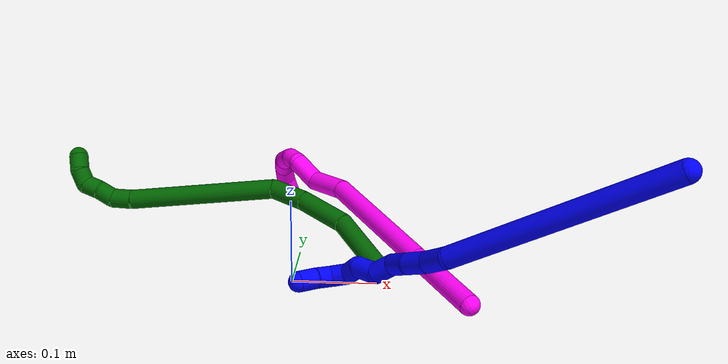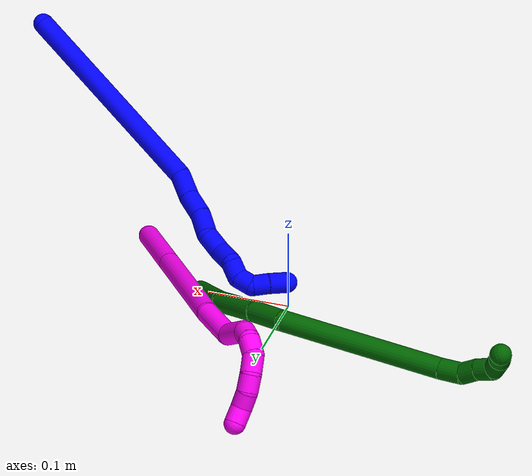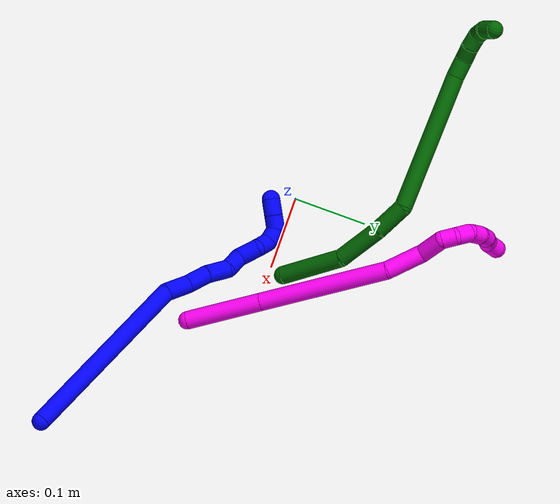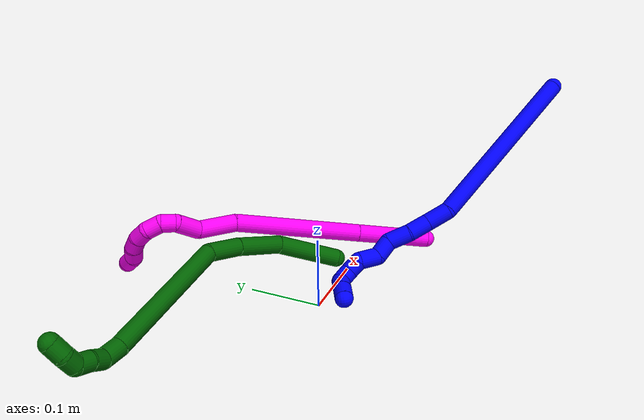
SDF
<sdf version="1.7">
 <world name="default">
  <model name="1">
   <static>0</static>
   <link name="1">
    <collision name="collision-cylinder-e_1_1_4">
     <pose>-0.076024 0.046349 -0.098505 -2.70181 -0.609606 1.9062</pose>
     <geometry><cylinder><radius>0.0125</radius><length>0.265564</length></cylinder></geometry>
     <surface>
      <friction><ode><mu>1.16</mu><mu2>1.16</mu2><slip1>0</slip1><slip2>0</slip2></ode></friction>
      <contact><ode><kp>1e+06</kp><kd>1</kd><max_vel>0</max_vel><min_depth>0.001</min_depth></ode></contact>
     </surface>
    </collision>
    <visual name="visual-cylinder-e_1_1_4">
     <pose>-0.076024 0.046349 -0.098505 -2.70181 -0.609606 1.9062</pose>
     <geometry><cylinder><radius>0.0125</radius><length>0.265564</length></cylinder></geometry>
     <material><ambient>0 0 1 1</ambient></material>
    </visual>
    <collision name="collision-cylinder-e_2_4_5">
     <pose>-0.158288 0.09359 -0.212978 -3.08571 -0.372092 2.84677</pose>
     <geometry><cylinder><radius>0.0125</radius><length>0.034335</length></cylinder></geometry>
     <surface>
      <friction><ode><mu>1.16</mu><mu2>1.16</mu2><slip1>0</slip1><slip2>0</slip2></ode></friction>
      <contact><ode><kp>1e+06</kp><kd>1</kd><max_vel>0</max_vel><min_depth>0.001</min_depth></ode></contact>
     </surface>
    </collision>
    <visual name="visual-cylinder-e_2_4_5">
     <pose>-0.158288 0.09359 -0.212978 -3.08571 -0.372092 2.84677</pose>
     <geometry><cylinder><radius>0.0125</radius><length>0.034335</length></cylinder></geometry>
     <material><ambient>0 0 1 1</ambient></material>
    </visual>
    <collision name="collision-cylinder-e_3_5_6">
     <pose>-0.169473 0.097666 -0.243044 -2.91956 -0.329509 1.96033</pose>
     <geometry><cylinder><radius>0.0125</radius><length>0.030552</length></cylinder></geometry>
     <surface>
      <friction><ode><mu>1.16</mu><mu2>1.16</mu2><slip1>0</slip1><slip2>0</slip2></ode></friction>
      <contact><ode><kp>1e+06</kp><kd>1</kd><max_vel>0</max_vel><min_depth>0.001</min_depth></ode></contact>
     </surface>
    </collision>
    <visual name="visual-cylinder-e_3_5_6">
     <pose>-0.169473 0.097666 -0.243044 -2.91956 -0.329509 1.96033</pose>
     <geometry><cylinder><radius>0.0125</radius><length>0.030552</length></cylinder></geometry>
     <material><ambient>0 0 1 1</ambient></material>
    </visual>
    <collision name="collision-cylinder-e_4_6_7">
     <pose>-0.178429 0.100951 -0.272412 -3.13491 -0.257003 3.08991</pose>
     <geometry><cylinder><radius>0.0125</radius><length>0.031575</length></cylinder></geometry>
     <surface>
      <friction><ode><mu>1.16</mu><mu2>1.16</mu2><slip1>0</slip1><slip2>0</slip2></ode></friction>
      <contact><ode><kp>1e+06</kp><kd>1</kd><max_vel>0</max_vel><min_depth>0.001</min_depth></ode></contact>
     </surface>
    </collision>
    <visual name="visual-cylinder-e_4_6_7">
     <pose>-0.178429 0.100951 -0.272412 -3.13491 -0.257003 3.08991</pose>
     <geometry><cylinder><radius>0.0125</radius><length>0.031575</length></cylinder></geometry>
     <material><ambient>0 0 1 1</ambient></material>
    </visual>
    <collision name="collision-cylinder-e_5_7_8">
     <pose>-0.190799 0.104793 -0.296889 -2.75581 -0.699199 2.15792</pose>
     <geometry><cylinder><radius>0.0125</radius><length>0.025971</length></cylinder></geometry>
     <surface>
      <friction><ode><mu>1.16</mu><mu2>1.16</mu2><slip1>0</slip1><slip2>0</slip2></ode></friction>
      <contact><ode><kp>1e+06</kp><kd>1</kd><max_vel>0</max_vel><min_depth>0.001</min_depth></ode></contact>
     </surface>
    </collision>
    <visual name="visual-cylinder-e_5_7_8">
     <pose>-0.190799 0.104793 -0.296889 -2.75581 -0.699199 2.15792</pose>
     <geometry><cylinder><radius>0.0125</radius><length>0.025971</length></cylinder></geometry>
     <material><ambient>0 0 1 1</ambient></material>
    </visual>
    <collision name="collision-cylinder-e_6_8_9">
     <pose>-0.199636 0.113355 -0.31966 -2.80002 -0.033324 0.192641</pose>
     <geometry><cylinder><radius>0.0125</radius><length>0.028805</length></cylinder></geometry>
     <surface>
      <friction><ode><mu>1.16</mu><mu2>1.16</mu2><slip1>0</slip1><slip2>0</slip2></ode></friction>
      <contact><ode><kp>1e+06</kp><kd>1</kd><max_vel>0</max_vel><min_depth>0.001</min_depth></ode></contact>
     </surface>
    </collision>
    <visual name="visual-cylinder-e_6_8_9">
     <pose>-0.199636 0.113355 -0.31966 -2.80002 -0.033324 0.192641</pose>
     <geometry><cylinder><radius>0.0125</radius><length>0.028805</length></cylinder></geometry>
     <material><ambient>0 0 1 1</ambient></material>
    </visual>
    <collision name="collision-cylinder-e_7_9_10">
     <pose>-0.206391 0.118673 -0.341214 -3.07951 -0.664738 2.96217</pose>
     <geometry><cylinder><radius>0.0125</radius><length>0.020345</length></cylinder></geometry>
     <surface>
      <friction><ode><mu>1.16</mu><mu2>1.16</mu2><slip1>0</slip1><slip2>0</slip2></ode></friction>
      <contact><ode><kp>1e+06</kp><kd>1</kd><max_vel>0</max_vel><min_depth>0.001</min_depth></ode></contact>
     </surface>
    </collision>
    <visual name="visual-cylinder-e_7_9_10">
     <pose>-0.206391 0.118673 -0.341214 -3.07951 -0.664738 2.96217</pose>
     <geometry><cylinder><radius>0.0125</radius><length>0.020345</length></cylinder></geometry>
     <material><ambient>0 0 1 1</ambient></material>
    </visual>
    <collision name="collision-cylinder-e_8_10_11">
     <pose>-0.217336 0.125432 -0.355887 -2.38857 -0.471632 1.09219</pose>
     <geometry><cylinder><radius>0.0125</radius><length>0.020558</length></cylinder></geometry>
     <surface>
      <friction><ode><mu>1.16</mu><mu2>1.16</mu2><slip1>0</slip1><slip2>0</slip2></ode></friction>
      <contact><ode><kp>1e+06</kp><kd>1</kd><max_vel>0</max_vel><min_depth>0.001</min_depth></ode></contact>
     </surface>
    </collision>
    <visual name="visual-cylinder-e_8_10_11">
     <pose>-0.217336 0.125432 -0.355887 -2.38857 -0.471632 1.09219</pose>
     <geometry><cylinder><radius>0.0125</radius><length>0.020558</length></cylinder></geometry>
     <material><ambient>0 0 1 1</ambient></material>
    </visual>
    <collision name="collision-cylinder-e_9_11_12">
     <pose>-0.225558 0.141169 -0.36231 -1.54361 -0.358451 0.349032</pose>
     <geometry><cylinder><radius>0.0125</radius><length>0.020244</length></cylinder></geometry>
     <surface>
      <friction><ode><mu>1.16</mu><mu2>1.16</mu2><slip1>0</slip1><slip2>0</slip2></ode></friction>
      <contact><ode><kp>1e+06</kp><kd>1</kd><max_vel>0</max_vel><min_depth>0.001</min_depth></ode></contact>
     </surface>
    </collision>
    <visual name="visual-cylinder-e_9_11_12">
     <pose>-0.225558 0.141169 -0.36231 -1.54361 -0.358451 0.349032</pose>
     <geometry><cylinder><radius>0.0125</radius><length>0.020244</length></cylinder></geometry>
     <material><ambient>0 0 1 1</ambient></material>
    </visual>
    <collision name="collision-cylinder-e_10_12_2">
     <pose>-0.233752 0.160643 -0.361938 -1.55937 -0.434708 0.429921</pose>
     <geometry><cylinder><radius>0.0125</radius><length>0.022052</length></cylinder></geometry>
     <surface>
      <friction><ode><mu>1.16</mu><mu2>1.16</mu2><slip1>0</slip1><slip2>0</slip2></ode></friction>
      <contact><ode><kp>1e+06</kp><kd>1</kd><max_vel>0</max_vel><min_depth>0.001</min_depth></ode></contact>
     </surface>
    </collision>
    <visual name="visual-cylinder-e_10_12_2">
     <pose>-0.233752 0.160643 -0.361938 -1.55937 -0.434708 0.429921</pose>
     <geometry><cylinder><radius>0.0125</radius><length>0.022052</length></cylinder></geometry>
     <material><ambient>0 0 1 1</ambient></material>
    </visual>
    <collision name="collision-sphere-2">
     <pose>-0.238396 0.170643 -0.361824 0 -0 0</pose>
     <geometry><sphere><radius>0.0125</radius></sphere></geometry>
     <surface>
      <friction><ode><mu>1.16</mu><mu2>1.16</mu2><slip1>0</slip1><slip2>0</slip2></ode></friction>
      <contact><ode><kp>1e+06</kp><kd>1</kd><max_vel>0</max_vel><min_depth>0.001</min_depth></ode></contact>
     </surface>
    </collision>
    <visual name="visual-sphere-2">
     <pose>-0.238396 0.170643 -0.361824 0 -0 0</pose>
     <geometry><sphere><radius>0.0125</radius></sphere></geometry>
     <material><ambient>0 0 1 1</ambient></material>
    </visual>
    <collision name="collision-sphere-12">
     <pose>-0.229109 0.150644 -0.362052 0 -0 0</pose>
     <geometry><sphere><radius>0.0125</radius></sphere></geometry>
     <surface>
      <friction><ode><mu>1.16</mu><mu2>1.16</mu2><slip1>0</slip1><slip2>0</slip2></ode></friction>
      <contact><ode><kp>1e+06</kp><kd>1</kd><max_vel>0</max_vel><min_depth>0.001</min_depth></ode></contact>
     </surface>
    </collision>
    <visual name="visual-sphere-12">
     <pose>-0.229109 0.150644 -0.362052 0 -0 0</pose>
     <geometry><sphere><radius>0.0125</radius></sphere></geometry>
     <material><ambient>0 0 1 1</ambient></material>
    </visual>
    <collision name="collision-sphere-11">
     <pose>-0.222007 0.131694 -0.362568 0 -0 0</pose>
     <geometry><sphere><radius>0.0125</radius></sphere></geometry>
     <surface>
      <friction><ode><mu>1.16</mu><mu2>1.16</mu2><slip1>0</slip1><slip2>0</slip2></ode></friction>
      <contact><ode><kp>1e+06</kp><kd>1</kd><max_vel>0</max_vel><min_depth>0.001</min_depth></ode></contact>
     </surface>
    </collision>
    <visual name="visual-sphere-11">
     <pose>-0.222007 0.131694 -0.362568 0 -0 0</pose>
     <geometry><sphere><radius>0.0125</radius></sphere></geometry>
     <material><ambient>0 0 1 1</ambient></material>
    </visual>
    <collision name="collision-sphere-10">
     <pose>-0.212666 0.11917 -0.349206 0 -0 0</pose>
     <geometry><sphere><radius>0.0125</radius></sphere></geometry>
     <surface>
      <friction><ode><mu>1.16</mu><mu2>1.16</mu2><slip1>0</slip1><slip2>0</slip2></ode></friction>
      <contact><ode><kp>1e+06</kp><kd>1</kd><max_vel>0</max_vel><min_depth>0.001</min_depth></ode></contact>
     </surface>
    </collision>
    <visual name="visual-sphere-10">
     <pose>-0.212666 0.11917 -0.349206 0 -0 0</pose>
     <geometry><sphere><radius>0.0125</radius></sphere></geometry>
     <material><ambient>0 0 1 1</ambient></material>
    </visual>
    <collision name="collision-sphere-9">
     <pose>-0.200116 0.118176 -0.333223 0 -0 0</pose>
     <geometry><sphere><radius>0.0125</radius></sphere></geometry>
     <surface>
      <friction><ode><mu>1.16</mu><mu2>1.16</mu2><slip1>0</slip1><slip2>0</slip2></ode></friction>
      <contact><ode><kp>1e+06</kp><kd>1</kd><max_vel>0</max_vel><min_depth>0.001</min_depth></ode></contact>
     </surface>
    </collision>
    <visual name="visual-sphere-9">
     <pose>-0.200116 0.118176 -0.333223 0 -0 0</pose>
     <geometry><sphere><radius>0.0125</radius></sphere></geometry>
     <material><ambient>0 0 1 1</ambient></material>
    </visual>
    <collision name="collision-sphere-4">
     <pose>-0.152047 0.092697 -0.19701 0 -0 0</pose>
     <geometry><sphere><radius>0.0125</radius></sphere></geometry>
     <surface>
      <friction><ode><mu>1.16</mu><mu2>1.16</mu2><slip1>0</slip1><slip2>0</slip2></ode></friction>
      <contact><ode><kp>1e+06</kp><kd>1</kd><max_vel>0</max_vel><min_depth>0.001</min_depth></ode></contact>
     </surface>
    </collision>
    <visual name="visual-sphere-4">
     <pose>-0.152047 0.092697 -0.19701 0 -0 0</pose>
     <geometry><sphere><radius>0.0125</radius></sphere></geometry>
     <material><ambient>0 0 1 1</ambient></material>
    </visual>
    <collision name="collision-sphere-1">
     <geometry><sphere><radius>0.0125</radius></sphere></geometry>
     <surface>
      <friction><ode><mu>1.16</mu><mu2>1.16</mu2><slip1>0</slip1><slip2>0</slip2></ode></friction>
      <contact><ode><kp>1e+06</kp><kd>1</kd><max_vel>0</max_vel><min_depth>0.001</min_depth></ode></contact>
     </surface>
    </collision>
    <visual name="visual-sphere-1">
     <geometry><sphere><radius>0.0125</radius></sphere></geometry>
     <material><ambient>0 0 1 1</ambient></material>
    </visual>
    <collision name="collision-sphere-8">
     <pose>-0.199156 0.108533 -0.306097 0 -0 0</pose>
     <geometry><sphere><radius>0.0125</radius></sphere></geometry>
     <surface>
      <friction><ode><mu>1.16</mu><mu2>1.16</mu2><slip1>0</slip1><slip2>0</slip2></ode></friction>
      <contact><ode><kp>1e+06</kp><kd>1</kd><max_vel>0</max_vel><min_depth>0.001</min_depth></ode></contact>
     </surface>
    </collision>
    <visual name="visual-sphere-8">
     <pose>-0.199156 0.108533 -0.306097 0 -0 0</pose>
     <geometry><sphere><radius>0.0125</radius></sphere></geometry>
     <material><ambient>0 0 1 1</ambient></material>
    </visual>
    <collision name="collision-sphere-5">
     <pose>-0.16453 0.094484 -0.228945 0 -0 0</pose>
     <geometry><sphere><radius>0.0125</radius></sphere></geometry>
     <surface>
      <friction><ode><mu>1.16</mu><mu2>1.16</mu2><slip1>0</slip1><slip2>0</slip2></ode></friction>
      <contact><ode><kp>1e+06</kp><kd>1</kd><max_vel>0</max_vel><min_depth>0.001</min_depth></ode></contact>
     </surface>
    </collision>
    <visual name="visual-sphere-5">
     <pose>-0.16453 0.094484 -0.228945 0 -0 0</pose>
     <geometry><sphere><radius>0.0125</radius></sphere></geometry>
     <material><ambient>0 0 1 1</ambient></material>
    </visual>
    <collision name="collision-sphere-6">
     <pose>-0.174416 0.100849 -0.257144 0 -0 0</pose>
     <geometry><sphere><radius>0.0125</radius></sphere></geometry>
     <surface>
      <friction><ode><mu>1.16</mu><mu2>1.16</mu2><slip1>0</slip1><slip2>0</slip2></ode></friction>
      <contact><ode><kp>1e+06</kp><kd>1</kd><max_vel>0</max_vel><min_depth>0.001</min_depth></ode></contact>
     </surface>
    </collision>
    <visual name="visual-sphere-6">
     <pose>-0.174416 0.100849 -0.257144 0 -0 0</pose>
     <geometry><sphere><radius>0.0125</radius></sphere></geometry>
     <material><ambient>0 0 1 1</ambient></material>
    </visual>
    <collision name="collision-sphere-7">
     <pose>-0.182442 0.101053 -0.287681 0 -0 0</pose>
     <geometry><sphere><radius>0.0125</radius></sphere></geometry>
     <surface>
      <friction><ode><mu>1.16</mu><mu2>1.16</mu2><slip1>0</slip1><slip2>0</slip2></ode></friction>
      <contact><ode><kp>1e+06</kp><kd>1</kd><max_vel>0</max_vel><min_depth>0.001</min_depth></ode></contact>
     </surface>
    </collision>
    <visual name="visual-sphere-7">
     <pose>-0.182442 0.101053 -0.287681 0 -0 0</pose>
     <geometry><sphere><radius>0.0125</radius></sphere></geometry>
     <material><ambient>0 0 1 1</ambient></material>
    </visual>
    <inertial>
     <pose>-0.131058 0.078147 -0.191983 0 -0 0</pose>
     <mass>0.5</mass>
     <inertia>
      <ixx>0.000778</ixx>
      <ixy>0</ixy>
      <ixz>0</ixz>
      <iyy>0.002079</iyy>
      <iyz>0</iyz>
      <izz>0.000325</izz>
     </inertia>
    </inertial>
   </link>
   <pose>0.391552 -0.217238 0.2078 1.27475 -1.15847 0.757304</pose>
  </model>
  <model name="6">
   <static>0</static>
   <link name="6">
    <collision name="collision-cylinder-e_1_1_4">
     <pose>-0.019321 0.025427 0.031174 -0.684223 -0.447742 0.161812</pose>
     <geometry><cylinder><radius>0.0125</radius><length>0.089256</length></cylinder></geometry>
     <surface>
      <friction><ode><mu>1.16</mu><mu2>1.16</mu2><slip1>0</slip1><slip2>0</slip2></ode></friction>
      <contact><ode><kp>1e+06</kp><kd>1</kd><max_vel>0</max_vel><min_depth>0.001</min_depth></ode></contact>
     </surface>
    </collision>
    <visual name="visual-cylinder-e_1_1_4">
     <pose>-0.019321 0.025427 0.031174 -0.684223 -0.447742 0.161812</pose>
     <geometry><cylinder><radius>0.0125</radius><length>0.089256</length></cylinder></geometry>
     <material><ambient>0 0.392157 0.003922 1</ambient></material>
    </visual>
    <collision name="collision-cylinder-e_2_4_5">
     <pose>-0.053197 0.058864 0.090234 -0.279687 -0.464989 0.066634</pose>
     <geometry><cylinder><radius>0.0125</radius><length>0.064921</length></cylinder></geometry>
     <surface>
      <friction><ode><mu>1.16</mu><mu2>1.16</mu2><slip1>0</slip1><slip2>0</slip2></ode></friction>
      <contact><ode><kp>1e+06</kp><kd>1</kd><max_vel>0</max_vel><min_depth>0.001</min_depth></ode></contact>
     </surface>
    </collision>
    <visual name="visual-cylinder-e_2_4_5">
     <pose>-0.053197 0.058864 0.090234 -0.279687 -0.464989 0.066634</pose>
     <geometry><cylinder><radius>0.0125</radius><length>0.064921</length></cylinder></geometry>
     <material><ambient>0 0.392157 0.003922 1</ambient></material>
    </visual>
    <collision name="collision-cylinder-e_3_5_6">
     <pose>-0.078937 0.069729 0.138369 -0.140068 -0.500474 0.035855</pose>
     <geometry><cylinder><radius>0.0125</radius><length>0.046615</length></cylinder></geometry>
     <surface>
      <friction><ode><mu>1.16</mu><mu2>1.16</mu2><slip1>0</slip1><slip2>0</slip2></ode></friction>
      <contact><ode><kp>1e+06</kp><kd>1</kd><max_vel>0</max_vel><min_depth>0.001</min_depth></ode></contact>
     </surface>
    </collision>
    <visual name="visual-cylinder-e_3_5_6">
     <pose>-0.078937 0.069729 0.138369 -0.140068 -0.500474 0.035855</pose>
     <geometry><cylinder><radius>0.0125</radius><length>0.046615</length></cylinder></geometry>
     <material><ambient>0 0.392157 0.003922 1</ambient></material>
    </visual>
    <collision name="collision-cylinder-e_4_6_7">
     <pose>-0.131316 0.034943 0.23635 0.450956 -0.445063 -0.103714</pose>
     <geometry><cylinder><radius>0.0125</radius><length>0.191376</length></cylinder></geometry>
     <surface>
      <friction><ode><mu>1.16</mu><mu2>1.16</mu2><slip1>0</slip1><slip2>0</slip2></ode></friction>
      <contact><ode><kp>1e+06</kp><kd>1</kd><max_vel>0</max_vel><min_depth>0.001</min_depth></ode></contact>
     </surface>
    </collision>
    <visual name="visual-cylinder-e_4_6_7">
     <pose>-0.131316 0.034943 0.23635 0.450956 -0.445063 -0.103714</pose>
     <geometry><cylinder><radius>0.0125</radius><length>0.191376</length></cylinder></geometry>
     <material><ambient>0 0.392157 0.003922 1</ambient></material>
    </visual>
    <collision name="collision-cylinder-e_5_7_8">
     <pose>-0.17778 -0.006239 0.325678 0.296405 -0.409986 -0.062062</pose>
     <geometry><cylinder><radius>0.0125</radius><length>0.026439</length></cylinder></geometry>
     <surface>
      <friction><ode><mu>1.16</mu><mu2>1.16</mu2><slip1>0</slip1><slip2>0</slip2></ode></friction>
      <contact><ode><kp>1e+06</kp><kd>1</kd><max_vel>0</max_vel><min_depth>0.001</min_depth></ode></contact>
     </surface>
    </collision>
    <visual name="visual-cylinder-e_5_7_8">
     <pose>-0.17778 -0.006239 0.325678 0.296405 -0.409986 -0.062062</pose>
     <geometry><cylinder><radius>0.0125</radius><length>0.026439</length></cylinder></geometry>
     <material><ambient>0 0.392157 0.003922 1</ambient></material>
    </visual>
    <collision name="collision-cylinder-e_6_8_9">
     <pose>-0.183283 -0.009463 0.34796 -0.029694 -0.021848 0.000324</pose>
     <geometry><cylinder><radius>0.0125</radius><length>0.021387</length></cylinder></geometry>
     <surface>
      <friction><ode><mu>1.16</mu><mu2>1.16</mu2><slip1>0</slip1><slip2>0</slip2></ode></friction>
      <contact><ode><kp>1e+06</kp><kd>1</kd><max_vel>0</max_vel><min_depth>0.001</min_depth></ode></contact>
     </surface>
    </collision>
    <visual name="visual-cylinder-e_6_8_9">
     <pose>-0.183283 -0.009463 0.34796 -0.029694 -0.021848 0.000324</pose>
     <geometry><cylinder><radius>0.0125</radius><length>0.021387</length></cylinder></geometry>
     <material><ambient>0 0.392157 0.003922 1</ambient></material>
    </visual>
    <collision name="collision-cylinder-e_7_9_10">
     <pose>-0.185793 -0.00933 0.368382 0.01892 -0.229642 -0.002182</pose>
     <geometry><cylinder><radius>0.0125</radius><length>0.020001</length></cylinder></geometry>
     <surface>
      <friction><ode><mu>1.16</mu><mu2>1.16</mu2><slip1>0</slip1><slip2>0</slip2></ode></friction>
      <contact><ode><kp>1e+06</kp><kd>1</kd><max_vel>0</max_vel><min_depth>0.001</min_depth></ode></contact>
     </surface>
    </collision>
    <visual name="visual-cylinder-e_7_9_10">
     <pose>-0.185793 -0.00933 0.368382 0.01892 -0.229642 -0.002182</pose>
     <geometry><cylinder><radius>0.0125</radius><length>0.020001</length></cylinder></geometry>
     <material><ambient>0 0.392157 0.003922 1</ambient></material>
    </visual>
    <collision name="collision-cylinder-e_8_10_11">
     <pose>-0.185707 -0.00404 0.386149 -0.598307 0.238493 -0.073871</pose>
     <geometry><cylinder><radius>0.0125</radius><length>0.020003</length></cylinder></geometry>
     <surface>
      <friction><ode><mu>1.16</mu><mu2>1.16</mu2><slip1>0</slip1><slip2>0</slip2></ode></friction>
      <contact><ode><kp>1e+06</kp><kd>1</kd><max_vel>0</max_vel><min_depth>0.001</min_depth></ode></contact>
     </surface>
    </collision>
    <visual name="visual-cylinder-e_8_10_11">
     <pose>-0.185707 -0.00404 0.386149 -0.598307 0.238493 -0.073871</pose>
     <geometry><cylinder><radius>0.0125</radius><length>0.020003</length></cylinder></geometry>
     <material><ambient>0 0.392157 0.003922 1</ambient></material>
    </visual>
    <collision name="collision-cylinder-e_9_11_2">
     <pose>-0.182904 0.0096 0.399935 -0.956785 0.04406 -0.022851</pose>
     <geometry><cylinder><radius>0.0125</radius><length>0.020002</length></cylinder></geometry>
     <surface>
      <friction><ode><mu>1.16</mu><mu2>1.16</mu2><slip1>0</slip1><slip2>0</slip2></ode></friction>
      <contact><ode><kp>1e+06</kp><kd>1</kd><max_vel>0</max_vel><min_depth>0.001</min_depth></ode></contact>
     </surface>
    </collision>
    <visual name="visual-cylinder-e_9_11_2">
     <pose>-0.182904 0.0096 0.399935 -0.956785 0.04406 -0.022851</pose>
     <geometry><cylinder><radius>0.0125</radius><length>0.020002</length></cylinder></geometry>
     <material><ambient>0 0.392157 0.003922 1</ambient></material>
    </visual>
    <collision name="collision-sphere-2">
     <pose>-0.182463 0.017766 0.405692 0 -0 0</pose>
     <geometry><sphere><radius>0.0125</radius></sphere></geometry>
     <surface>
      <friction><ode><mu>1.16</mu><mu2>1.16</mu2><slip1>0</slip1><slip2>0</slip2></ode></friction>
      <contact><ode><kp>1e+06</kp><kd>1</kd><max_vel>0</max_vel><min_depth>0.001</min_depth></ode></contact>
     </surface>
    </collision>
    <visual name="visual-sphere-2">
     <pose>-0.182463 0.017766 0.405692 0 -0 0</pose>
     <geometry><sphere><radius>0.0125</radius></sphere></geometry>
     <material><ambient>0 0.392157 0.003922 1</ambient></material>
    </visual>
    <collision name="collision-sphere-11">
     <pose>-0.183344 0.001434 0.394179 0 -0 0</pose>
     <geometry><sphere><radius>0.0125</radius></sphere></geometry>
     <surface>
      <friction><ode><mu>1.16</mu><mu2>1.16</mu2><slip1>0</slip1><slip2>0</slip2></ode></friction>
      <contact><ode><kp>1e+06</kp><kd>1</kd><max_vel>0</max_vel><min_depth>0.001</min_depth></ode></contact>
     </surface>
    </collision>
    <visual name="visual-sphere-11">
     <pose>-0.183344 0.001434 0.394179 0 -0 0</pose>
     <geometry><sphere><radius>0.0125</radius></sphere></geometry>
     <material><ambient>0 0.392157 0.003922 1</ambient></material>
    </visual>
    <collision name="collision-sphere-10">
     <pose>-0.18807 -0.009514 0.378119 0 -0 0</pose>
     <geometry><sphere><radius>0.0125</radius></sphere></geometry>
     <surface>
      <friction><ode><mu>1.16</mu><mu2>1.16</mu2><slip1>0</slip1><slip2>0</slip2></ode></friction>
      <contact><ode><kp>1e+06</kp><kd>1</kd><max_vel>0</max_vel><min_depth>0.001</min_depth></ode></contact>
     </surface>
    </collision>
    <visual name="visual-sphere-10">
     <pose>-0.18807 -0.009514 0.378119 0 -0 0</pose>
     <geometry><sphere><radius>0.0125</radius></sphere></geometry>
     <material><ambient>0 0.392157 0.003922 1</ambient></material>
    </visual>
    <collision name="collision-sphere-9">
     <pose>-0.183517 -0.009145 0.358646 0 -0 0</pose>
     <geometry><sphere><radius>0.0125</radius></sphere></geometry>
     <surface>
      <friction><ode><mu>1.16</mu><mu2>1.16</mu2><slip1>0</slip1><slip2>0</slip2></ode></friction>
      <contact><ode><kp>1e+06</kp><kd>1</kd><max_vel>0</max_vel><min_depth>0.001</min_depth></ode></contact>
     </surface>
    </collision>
    <visual name="visual-sphere-9">
     <pose>-0.183517 -0.009145 0.358646 0 -0 0</pose>
     <geometry><sphere><radius>0.0125</radius></sphere></geometry>
     <material><ambient>0 0.392157 0.003922 1</ambient></material>
    </visual>
    <collision name="collision-sphere-4">
     <pose>-0.038642 0.050855 0.062347 0 -0 0</pose>
     <geometry><sphere><radius>0.0125</radius></sphere></geometry>
     <surface>
      <friction><ode><mu>1.16</mu><mu2>1.16</mu2><slip1>0</slip1><slip2>0</slip2></ode></friction>
      <contact><ode><kp>1e+06</kp><kd>1</kd><max_vel>0</max_vel><min_depth>0.001</min_depth></ode></contact>
     </surface>
    </collision>
    <visual name="visual-sphere-4">
     <pose>-0.038642 0.050855 0.062347 0 -0 0</pose>
     <geometry><sphere><radius>0.0125</radius></sphere></geometry>
     <material><ambient>0 0.392157 0.003922 1</ambient></material>
    </visual>
    <collision name="collision-sphere-1">
     <geometry><sphere><radius>0.0125</radius></sphere></geometry>
     <surface>
      <friction><ode><mu>1.16</mu><mu2>1.16</mu2><slip1>0</slip1><slip2>0</slip2></ode></friction>
      <contact><ode><kp>1e+06</kp><kd>1</kd><max_vel>0</max_vel><min_depth>0.001</min_depth></ode></contact>
     </surface>
    </collision>
    <visual name="visual-sphere-1">
     <geometry><sphere><radius>0.0125</radius></sphere></geometry>
     <material><ambient>0 0.392157 0.003922 1</ambient></material>
    </visual>
    <collision name="collision-sphere-8">
     <pose>-0.183049 -0.00978 0.337273 0 -0 0</pose>
     <geometry><sphere><radius>0.0125</radius></sphere></geometry>
     <surface>
      <friction><ode><mu>1.16</mu><mu2>1.16</mu2><slip1>0</slip1><slip2>0</slip2></ode></friction>
      <contact><ode><kp>1e+06</kp><kd>1</kd><max_vel>0</max_vel><min_depth>0.001</min_depth></ode></contact>
     </surface>
    </collision>
    <visual name="visual-sphere-8">
     <pose>-0.183049 -0.00978 0.337273 0 -0 0</pose>
     <geometry><sphere><radius>0.0125</radius></sphere></geometry>
     <material><ambient>0 0.392157 0.003922 1</ambient></material>
    </visual>
    <collision name="collision-sphere-5">
     <pose>-0.067753 0.066874 0.118121 0 -0 0</pose>
     <geometry><sphere><radius>0.0125</radius></sphere></geometry>
     <surface>
      <friction><ode><mu>1.16</mu><mu2>1.16</mu2><slip1>0</slip1><slip2>0</slip2></ode></friction>
      <contact><ode><kp>1e+06</kp><kd>1</kd><max_vel>0</max_vel><min_depth>0.001</min_depth></ode></contact>
     </surface>
    </collision>
    <visual name="visual-sphere-5">
     <pose>-0.067753 0.066874 0.118121 0 -0 0</pose>
     <geometry><sphere><radius>0.0125</radius></sphere></geometry>
     <material><ambient>0 0.392157 0.003922 1</ambient></material>
    </visual>
    <collision name="collision-sphere-6">
     <pose>-0.090121 0.072584 0.158618 0 -0 0</pose>
     <geometry><sphere><radius>0.0125</radius></sphere></geometry>
     <surface>
      <friction><ode><mu>1.16</mu><mu2>1.16</mu2><slip1>0</slip1><slip2>0</slip2></ode></friction>
      <contact><ode><kp>1e+06</kp><kd>1</kd><max_vel>0</max_vel><min_depth>0.001</min_depth></ode></contact>
     </surface>
    </collision>
    <visual name="visual-sphere-6">
     <pose>-0.090121 0.072584 0.158618 0 -0 0</pose>
     <geometry><sphere><radius>0.0125</radius></sphere></geometry>
     <material><ambient>0 0.392157 0.003922 1</ambient></material>
    </visual>
    <collision name="collision-sphere-7">
     <pose>-0.172511 -0.002698 0.314082 0 -0 0</pose>
     <geometry><sphere><radius>0.0125</radius></sphere></geometry>
     <surface>
      <friction><ode><mu>1.16</mu><mu2>1.16</mu2><slip1>0</slip1><slip2>0</slip2></ode></friction>
      <contact><ode><kp>1e+06</kp><kd>1</kd><max_vel>0</max_vel><min_depth>0.001</min_depth></ode></contact>
     </surface>
    </collision>
    <visual name="visual-sphere-7">
     <pose>-0.172511 -0.002698 0.314082 0 -0 0</pose>
     <geometry><sphere><radius>0.0125</radius></sphere></geometry>
     <material><ambient>0 0.392157 0.003922 1</ambient></material>
    </visual>
    <inertial>
     <pose>-0.107396 0.031172 0.198933 0 -0 0</pose>
     <mass>0.5</mass>
     <inertia>
      <ixx>0.000568</ixx>
      <ixy>0</ixy>
      <ixz>0</ixz>
      <iyy>0.000591</iyy>
      <iyz>0</iyz>
      <izz>0.000519</izz>
     </inertia>
    </inertial>
   </link>
   <pose>0.103971 0.01896 0.011913 0.863171 -0.719835 -1.11141</pose>
  </model>
  <model name="10">
   <static>0</static>
   <link name="10">
    <collision name="collision-cylinder-e_1_1_4">
     <pose>-0.01255 0.04653 0.021906 -1.13079 -0.239349 0.152299</pose>
     <geometry><cylinder><radius>0.0125</radius><length>0.105875</length></cylinder></geometry>
     <surface>
      <friction><ode><mu>1.16</mu><mu2>1.16</mu2><slip1>0</slip1><slip2>0</slip2></ode></friction>
      <contact><ode><kp>1e+06</kp><kd>1</kd><max_vel>0</max_vel><min_depth>0.001</min_depth></ode></contact>
     </surface>
    </collision>
    <visual name="visual-cylinder-e_1_1_4">
     <pose>-0.01255 0.04653 0.021906 -1.13079 -0.239349 0.152299</pose>
     <geometry><cylinder><radius>0.0125</radius><length>0.105875</length></cylinder></geometry>
     <material><ambient>1 0 0.964706 1</ambient></material>
    </visual>
    <collision name="collision-cylinder-e_2_4_5">
     <pose>-0.046522 0.172206 0.081043 -1.13109 -0.240189 0.152887</pose>
     <geometry><cylinder><radius>0.0125</radius><length>0.180102</length></cylinder></geometry>
     <surface>
      <friction><ode><mu>1.16</mu><mu2>1.16</mu2><slip1>0</slip1><slip2>0</slip2></ode></friction>
      <contact><ode><kp>1e+06</kp><kd>1</kd><max_vel>0</max_vel><min_depth>0.001</min_depth></ode></contact>
     </surface>
    </collision>
    <visual name="visual-cylinder-e_2_4_5">
     <pose>-0.046522 0.172206 0.081043 -1.13109 -0.240189 0.152887</pose>
     <geometry><cylinder><radius>0.0125</radius><length>0.180102</length></cylinder></geometry>
     <material><ambient>1 0 0.964706 1</ambient></material>
    </visual>
    <collision name="collision-cylinder-e_3_5_6">
     <pose>-0.072531 0.271084 0.135595 -0.85044 -0.172988 0.078493</pose>
     <geometry><cylinder><radius>0.0125</radius><length>0.053306</length></cylinder></geometry>
     <surface>
      <friction><ode><mu>1.16</mu><mu2>1.16</mu2><slip1>0</slip1><slip2>0</slip2></ode></friction>
      <contact><ode><kp>1e+06</kp><kd>1</kd><max_vel>0</max_vel><min_depth>0.001</min_depth></ode></contact>
     </surface>
    </collision>
    <visual name="visual-cylinder-e_3_5_6">
     <pose>-0.072531 0.271084 0.135595 -0.85044 -0.172988 0.078493</pose>
     <geometry><cylinder><radius>0.0125</radius><length>0.053306</length></cylinder></geometry>
     <material><ambient>1 0 0.964706 1</ambient></material>
    </visual>
    <collision name="collision-cylinder-e_4_6_7">
     <pose>-0.072597 0.308106 0.158128 -1.27791 0.245403 -0.182725</pose>
     <geometry><cylinder><radius>0.0125</radius><length>0.037231</length></cylinder></geometry>
     <surface>
      <friction><ode><mu>1.16</mu><mu2>1.16</mu2><slip1>0</slip1><slip2>0</slip2></ode></friction>
      <contact><ode><kp>1e+06</kp><kd>1</kd><max_vel>0</max_vel><min_depth>0.001</min_depth></ode></contact>
     </surface>
    </collision>
    <visual name="visual-cylinder-e_4_6_7">
     <pose>-0.072597 0.308106 0.158128 -1.27791 0.245403 -0.182725</pose>
     <geometry><cylinder><radius>0.0125</radius><length>0.037231</length></cylinder></geometry>
     <material><ambient>1 0 0.964706 1</ambient></material>
    </visual>
    <collision name="collision-cylinder-e_5_7_8">
     <pose>-0.071186 0.333493 0.168386 -1.01369 -0.315324 0.176084</pose>
     <geometry><cylinder><radius>0.0125</radius><length>0.020073</length></cylinder></geometry>
     <surface>
      <friction><ode><mu>1.16</mu><mu2>1.16</mu2><slip1>0</slip1><slip2>0</slip2></ode></friction>
      <contact><ode><kp>1e+06</kp><kd>1</kd><max_vel>0</max_vel><min_depth>0.001</min_depth></ode></contact>
     </surface>
    </collision>
    <visual name="visual-cylinder-e_5_7_8">
     <pose>-0.071186 0.333493 0.168386 -1.01369 -0.315324 0.176084</pose>
     <geometry><cylinder><radius>0.0125</radius><length>0.020073</length></cylinder></geometry>
     <material><ambient>1 0 0.964706 1</ambient></material>
    </visual>
    <collision name="collision-cylinder-e_6_8_9">
     <pose>-0.079859 0.346227 0.18134 -0.530138 -0.545153 0.151472</pose>
     <geometry><cylinder><radius>0.0125</radius><length>0.021444</length></cylinder></geometry>
     <surface>
      <friction><ode><mu>1.16</mu><mu2>1.16</mu2><slip1>0</slip1><slip2>0</slip2></ode></friction>
      <contact><ode><kp>1e+06</kp><kd>1</kd><max_vel>0</max_vel><min_depth>0.001</min_depth></ode></contact>
     </surface>
    </collision>
    <visual name="visual-cylinder-e_6_8_9">
     <pose>-0.079859 0.346227 0.18134 -0.530138 -0.545153 0.151472</pose>
     <geometry><cylinder><radius>0.0125</radius><length>0.021444</length></cylinder></geometry>
     <material><ambient>1 0 0.964706 1</ambient></material>
    </visual>
    <collision name="collision-cylinder-e_7_9_10">
     <pose>-0.094138 0.351415 0.195574 -0.087116 -0.941468 0.044353</pose>
     <geometry><cylinder><radius>0.0125</radius><length>0.021571</length></cylinder></geometry>
     <surface>
      <friction><ode><mu>1.16</mu><mu2>1.16</mu2><slip1>0</slip1><slip2>0</slip2></ode></friction>
      <contact><ode><kp>1e+06</kp><kd>1</kd><max_vel>0</max_vel><min_depth>0.001</min_depth></ode></contact>
     </surface>
    </collision>
    <visual name="visual-cylinder-e_7_9_10">
     <pose>-0.094138 0.351415 0.195574 -0.087116 -0.941468 0.044353</pose>
     <geometry><cylinder><radius>0.0125</radius><length>0.021571</length></cylinder></geometry>
     <material><ambient>1 0 0.964706 1</ambient></material>
    </visual>
    <collision name="collision-cylinder-e_8_10_11">
     <pose>-0.110948 0.349345 0.207495 0.43819 -0.918458 -0.219332</pose>
     <geometry><cylinder><radius>0.0125</radius><length>0.020364</length></cylinder></geometry>
     <surface>
      <friction><ode><mu>1.16</mu><mu2>1.16</mu2><slip1>0</slip1><slip2>0</slip2></ode></friction>
      <contact><ode><kp>1e+06</kp><kd>1</kd><max_vel>0</max_vel><min_depth>0.001</min_depth></ode></contact>
     </surface>
    </collision>
    <visual name="visual-cylinder-e_8_10_11">
     <pose>-0.110948 0.349345 0.207495 0.43819 -0.918458 -0.219332</pose>
     <geometry><cylinder><radius>0.0125</radius><length>0.020364</length></cylinder></geometry>
     <material><ambient>1 0 0.964706 1</ambient></material>
    </visual>
    <collision name="collision-cylinder-e_9_11_12">
     <pose>-0.126634 0.341563 0.217077 0.913134 -0.861454 -0.443957</pose>
     <geometry><cylinder><radius>0.0125</radius><length>0.020017</length></cylinder></geometry>
     <surface>
      <friction><ode><mu>1.16</mu><mu2>1.16</mu2><slip1>0</slip1><slip2>0</slip2></ode></friction>
      <contact><ode><kp>1e+06</kp><kd>1</kd><max_vel>0</max_vel><min_depth>0.001</min_depth></ode></contact>
     </surface>
    </collision>
    <visual name="visual-cylinder-e_9_11_12">
     <pose>-0.126634 0.341563 0.217077 0.913134 -0.861454 -0.443957</pose>
     <geometry><cylinder><radius>0.0125</radius><length>0.020017</length></cylinder></geometry>
     <material><ambient>1 0 0.964706 1</ambient></material>
    </visual>
    <collision name="collision-cylinder-e_10_12_2">
     <pose>-0.143497 0.336005 0.224818 0.105917 -1.18377 -0.071243</pose>
     <geometry><cylinder><radius>0.0125</radius><length>0.020018</length></cylinder></geometry>
     <surface>
      <friction><ode><mu>1.16</mu><mu2>1.16</mu2><slip1>0</slip1><slip2>0</slip2></ode></friction>
      <contact><ode><kp>1e+06</kp><kd>1</kd><max_vel>0</max_vel><min_depth>0.001</min_depth></ode></contact>
     </surface>
    </collision>
    <visual name="visual-cylinder-e_10_12_2">
     <pose>-0.143497 0.336005 0.224818 0.105917 -1.18377 -0.071243</pose>
     <geometry><cylinder><radius>0.0125</radius><length>0.020018</length></cylinder></geometry>
     <material><ambient>1 0 0.964706 1</ambient></material>
    </visual>
    <collision name="collision-sphere-2">
     <pose>-0.152765 0.335605 0.228575 0 -0 0</pose>
     <geometry><sphere><radius>0.0125</radius></sphere></geometry>
     <surface>
      <friction><ode><mu>1.16</mu><mu2>1.16</mu2><slip1>0</slip1><slip2>0</slip2></ode></friction>
      <contact><ode><kp>1e+06</kp><kd>1</kd><max_vel>0</max_vel><min_depth>0.001</min_depth></ode></contact>
     </surface>
    </collision>
    <visual name="visual-sphere-2">
     <pose>-0.152765 0.335605 0.228575 0 -0 0</pose>
     <geometry><sphere><radius>0.0125</radius></sphere></geometry>
     <material><ambient>1 0 0.964706 1</ambient></material>
    </visual>
    <collision name="collision-sphere-12">
     <pose>-0.134228 0.336404 0.221061 0 -0 0</pose>
     <geometry><sphere><radius>0.0125</radius></sphere></geometry>
     <surface>
      <friction><ode><mu>1.16</mu><mu2>1.16</mu2><slip1>0</slip1><slip2>0</slip2></ode></friction>
      <contact><ode><kp>1e+06</kp><kd>1</kd><max_vel>0</max_vel><min_depth>0.001</min_depth></ode></contact>
     </surface>
    </collision>
    <visual name="visual-sphere-12">
     <pose>-0.134228 0.336404 0.221061 0 -0 0</pose>
     <geometry><sphere><radius>0.0125</radius></sphere></geometry>
     <material><ambient>1 0 0.964706 1</ambient></material>
    </visual>
    <collision name="collision-sphere-11">
     <pose>-0.119039 0.346723 0.213092 0 -0 0</pose>
     <geometry><sphere><radius>0.0125</radius></sphere></geometry>
     <surface>
      <friction><ode><mu>1.16</mu><mu2>1.16</mu2><slip1>0</slip1><slip2>0</slip2></ode></friction>
      <contact><ode><kp>1e+06</kp><kd>1</kd><max_vel>0</max_vel><min_depth>0.001</min_depth></ode></contact>
     </surface>
    </collision>
    <visual name="visual-sphere-11">
     <pose>-0.119039 0.346723 0.213092 0 -0 0</pose>
     <geometry><sphere><radius>0.0125</radius></sphere></geometry>
     <material><ambient>1 0 0.964706 1</ambient></material>
    </visual>
    <collision name="collision-sphere-10">
     <pose>-0.102857 0.351968 0.201898 0 -0 0</pose>
     <geometry><sphere><radius>0.0125</radius></sphere></geometry>
     <surface>
      <friction><ode><mu>1.16</mu><mu2>1.16</mu2><slip1>0</slip1><slip2>0</slip2></ode></friction>
      <contact><ode><kp>1e+06</kp><kd>1</kd><max_vel>0</max_vel><min_depth>0.001</min_depth></ode></contact>
     </surface>
    </collision>
    <visual name="visual-sphere-10">
     <pose>-0.102857 0.351968 0.201898 0 -0 0</pose>
     <geometry><sphere><radius>0.0125</radius></sphere></geometry>
     <material><ambient>1 0 0.964706 1</ambient></material>
    </visual>
    <collision name="collision-sphere-9">
     <pose>-0.085418 0.350863 0.189249 0 -0 0</pose>
     <geometry><sphere><radius>0.0125</radius></sphere></geometry>
     <surface>
      <friction><ode><mu>1.16</mu><mu2>1.16</mu2><slip1>0</slip1><slip2>0</slip2></ode></friction>
      <contact><ode><kp>1e+06</kp><kd>1</kd><max_vel>0</max_vel><min_depth>0.001</min_depth></ode></contact>
     </surface>
    </collision>
    <visual name="visual-sphere-9">
     <pose>-0.085418 0.350863 0.189249 0 -0 0</pose>
     <geometry><sphere><radius>0.0125</radius></sphere></geometry>
     <material><ambient>1 0 0.964706 1</ambient></material>
    </visual>
    <collision name="collision-sphere-4">
     <pose>-0.0251 0.09306 0.043811 0 -0 0</pose>
     <geometry><sphere><radius>0.0125</radius></sphere></geometry>
     <surface>
      <friction><ode><mu>1.16</mu><mu2>1.16</mu2><slip1>0</slip1><slip2>0</slip2></ode></friction>
      <contact><ode><kp>1e+06</kp><kd>1</kd><max_vel>0</max_vel><min_depth>0.001</min_depth></ode></contact>
     </surface>
    </collision>
    <visual name="visual-sphere-4">
     <pose>-0.0251 0.09306 0.043811 0 -0 0</pose>
     <geometry><sphere><radius>0.0125</radius></sphere></geometry>
     <material><ambient>1 0 0.964706 1</ambient></material>
    </visual>
    <collision name="collision-sphere-1">
     <geometry><sphere><radius>0.0125</radius></sphere></geometry>
     <surface>
      <friction><ode><mu>1.16</mu><mu2>1.16</mu2><slip1>0</slip1><slip2>0</slip2></ode></friction>
      <contact><ode><kp>1e+06</kp><kd>1</kd><max_vel>0</max_vel><min_depth>0.001</min_depth></ode></contact>
     </surface>
    </collision>
    <visual name="visual-sphere-1">
     <geometry><sphere><radius>0.0125</radius></sphere></geometry>
     <material><ambient>1 0 0.964706 1</ambient></material>
    </visual>
    <collision name="collision-sphere-8">
     <pose>-0.074299 0.341592 0.173431 0 -0 0</pose>
     <geometry><sphere><radius>0.0125</radius></sphere></geometry>
     <surface>
      <friction><ode><mu>1.16</mu><mu2>1.16</mu2><slip1>0</slip1><slip2>0</slip2></ode></friction>
      <contact><ode><kp>1e+06</kp><kd>1</kd><max_vel>0</max_vel><min_depth>0.001</min_depth></ode></contact>
     </surface>
    </collision>
    <visual name="visual-sphere-8">
     <pose>-0.074299 0.341592 0.173431 0 -0 0</pose>
     <geometry><sphere><radius>0.0125</radius></sphere></geometry>
     <material><ambient>1 0 0.964706 1</ambient></material>
    </visual>
    <collision name="collision-sphere-5">
     <pose>-0.067944 0.251352 0.118276 0 -0 0</pose>
     <geometry><sphere><radius>0.0125</radius></sphere></geometry>
     <surface>
      <friction><ode><mu>1.16</mu><mu2>1.16</mu2><slip1>0</slip1><slip2>0</slip2></ode></friction>
      <contact><ode><kp>1e+06</kp><kd>1</kd><max_vel>0</max_vel><min_depth>0.001</min_depth></ode></contact>
     </surface>
    </collision>
    <visual name="visual-sphere-5">
     <pose>-0.067944 0.251352 0.118276 0 -0 0</pose>
     <geometry><sphere><radius>0.0125</radius></sphere></geometry>
     <material><ambient>1 0 0.964706 1</ambient></material>
    </visual>
    <collision name="collision-sphere-6">
     <pose>-0.077119 0.290817 0.152914 0 -0 0</pose>
     <geometry><sphere><radius>0.0125</radius></sphere></geometry>
     <surface>
      <friction><ode><mu>1.16</mu><mu2>1.16</mu2><slip1>0</slip1><slip2>0</slip2></ode></friction>
      <contact><ode><kp>1e+06</kp><kd>1</kd><max_vel>0</max_vel><min_depth>0.001</min_depth></ode></contact>
     </surface>
    </collision>
    <visual name="visual-sphere-6">
     <pose>-0.077119 0.290817 0.152914 0 -0 0</pose>
     <geometry><sphere><radius>0.0125</radius></sphere></geometry>
     <material><ambient>1 0 0.964706 1</ambient></material>
    </visual>
    <collision name="collision-sphere-7">
     <pose>-0.068074 0.325394 0.163341 0 -0 0</pose>
     <geometry><sphere><radius>0.0125</radius></sphere></geometry>
     <surface>
      <friction><ode><mu>1.16</mu><mu2>1.16</mu2><slip1>0</slip1><slip2>0</slip2></ode></friction>
      <contact><ode><kp>1e+06</kp><kd>1</kd><max_vel>0</max_vel><min_depth>0.001</min_depth></ode></contact>
     </surface>
    </collision>
    <visual name="visual-sphere-7">
     <pose>-0.068074 0.325394 0.163341 0 -0 0</pose>
     <geometry><sphere><radius>0.0125</radius></sphere></geometry>
     <material><ambient>1 0 0.964706 1</ambient></material>
    </visual>
    <inertial>
     <pose>-0.05823 0.208477 0.109178 0 -0 0</pose>
     <mass>0.5</mass>
     <inertia>
      <ixx>0.000675</ixx>
      <ixy>0</ixy>
      <ixz>0</ixz>
      <iyy>0.000405</iyy>
      <iyz>0</iyz>
      <izz>-0.000374</izz>
     </inertia>
    </inertial>
   </link>
   <pose>0.206265 -0.083123 0.011787 2.32163 -0.496686 -2.1495</pose>
  </model>
 </world>
</sdf>
